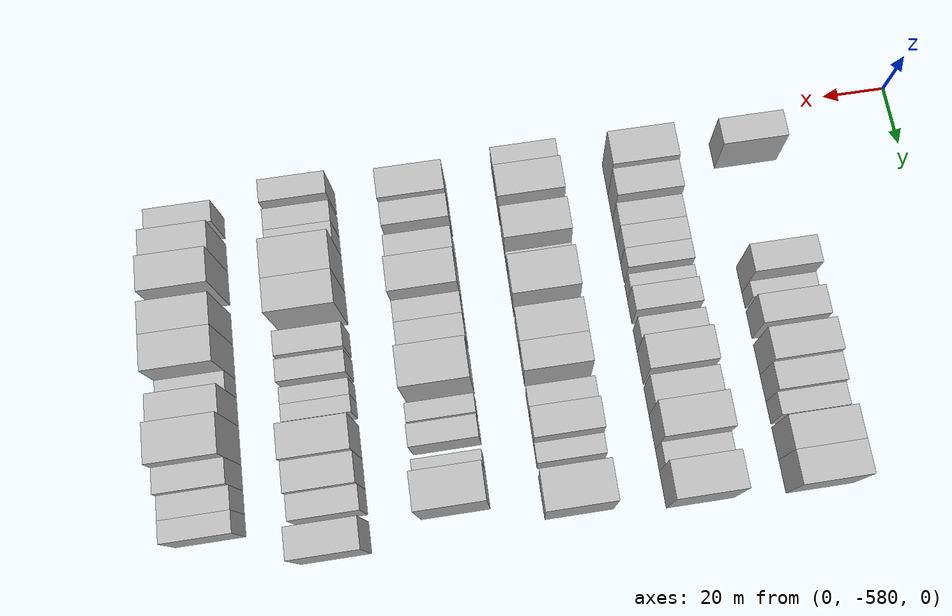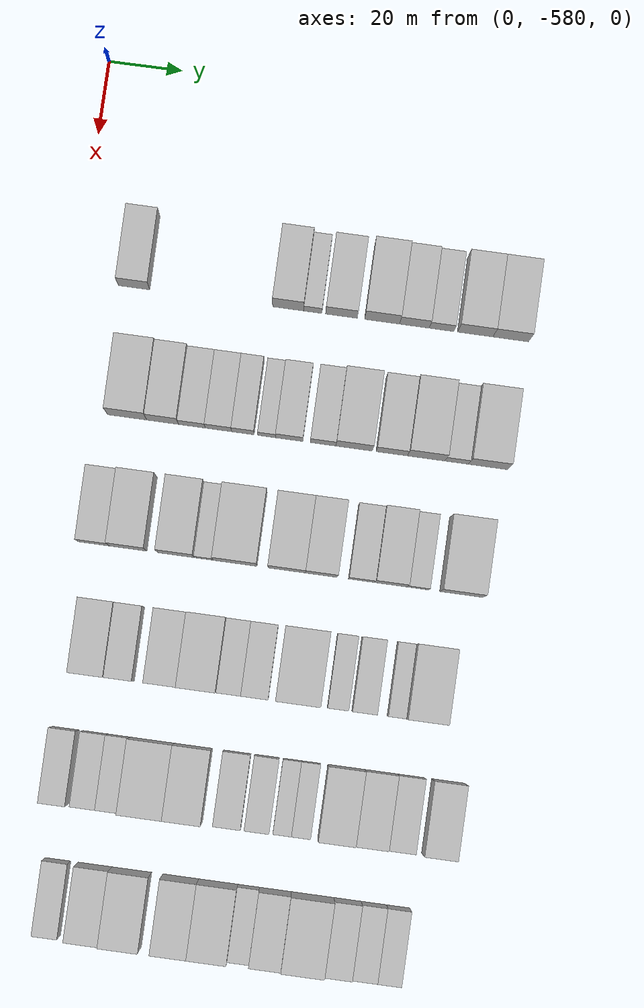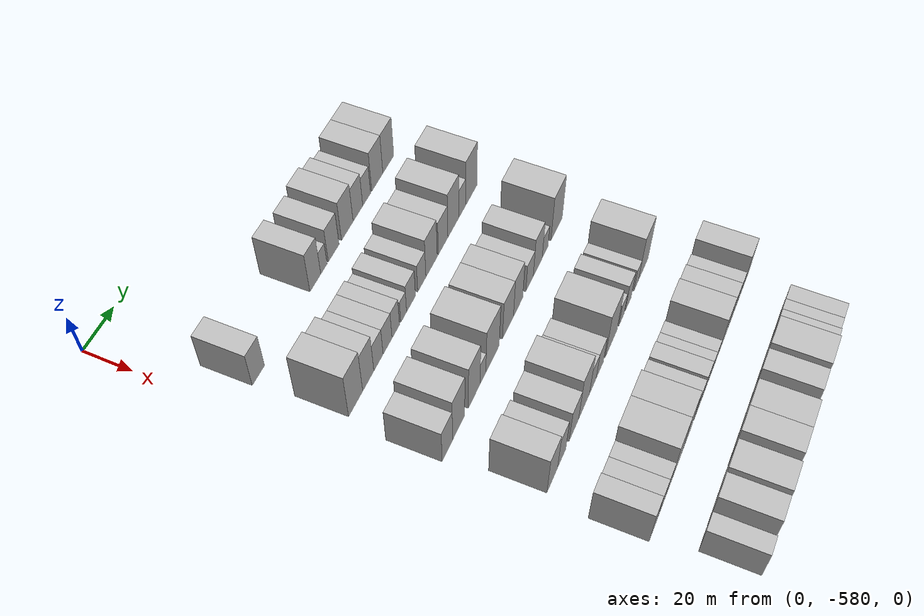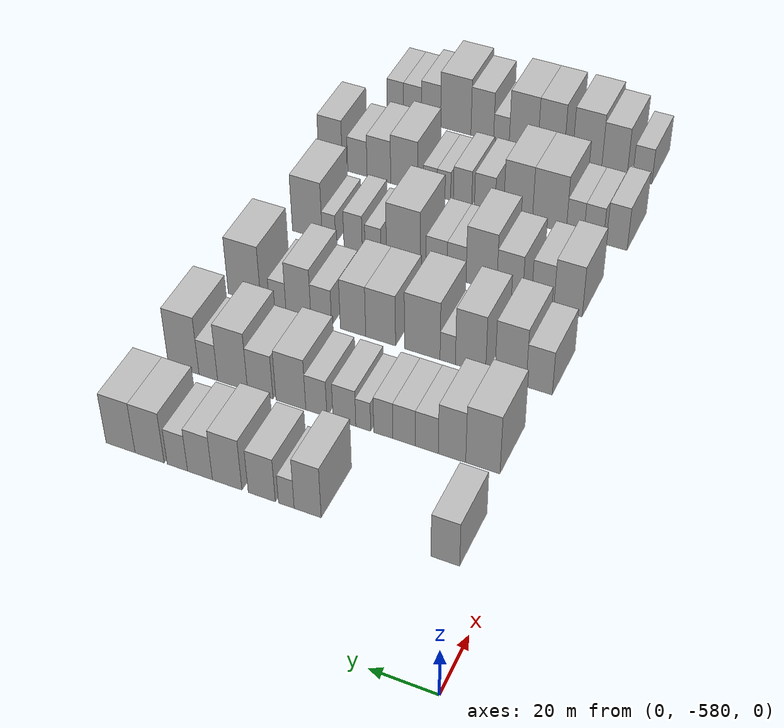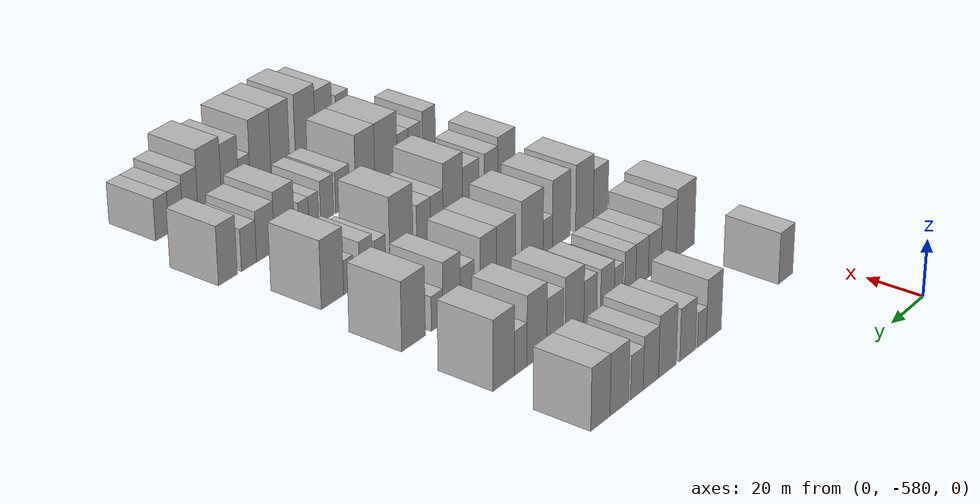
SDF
<sdf version="1.6">
 <world name="default">
  <model name="building_1">
   <static>1</static>
   <pose>50.0000 -564.7343 0 0.000000 0.000000 0.000000</pose>
   <link name="link">
    <pose>0 0 9.00 0 0 0</pose>
    <collision name="collision"><geometry><box><size>20.0000 8.5313 18.0000</size></box></geometry></collision>
    <visual name="visual">
     <cast_shadows>0</cast_shadows>
     <geometry><box><size>20.0000 8.5313 18.0000</size></box></geometry>
     <material>
      <script>
       <uri>model://HANNAS_wall/materials/scripts</uri>
       <uri>model://HANNAS_wall/materials/textures</uri>
       <name>vrc/HANNAS_wall</name>
      </script>
     </material>
    </visual>
   </link>
  </model>
  <model name="building_2">
   <static>1</static>
   <pose>50.0000 -522.7855 0 0.000000 0.000000 0.000000</pose>
   <link name="link">
    <pose>0 0 10.50 0 0 0</pose>
    <collision name="collision"><geometry><box><size>20.0000 8.4554 21.0000</size></box></geometry></collision>
    <visual name="visual">
     <cast_shadows>0</cast_shadows>
     <geometry><box><size>20.0000 8.4554 21.0000</size></box></geometry>
     <material>
      <script>
       <uri>model://HANNAS_wall/materials/scripts</uri>
       <uri>model://HANNAS_wall/materials/textures</uri>
       <name>vrc/HANNAS_wall</name>
      </script>
     </material>
    </visual>
   </link>
  </model>
  <model name="building_3">
   <static>1</static>
   <pose>50.0000 -516.0890 0 0.000000 0.000000 0.000000</pose>
   <link name="link">
    <pose>0 0 6.00 0 0 0</pose>
    <collision name="collision"><geometry><box><size>20.0000 4.9377 12.0000</size></box></geometry></collision>
    <visual name="visual">
     <cast_shadows>0</cast_shadows>
     <geometry><box><size>20.0000 4.9377 12.0000</size></box></geometry>
     <material>
      <script>
       <uri>model://HANNAS_wall/materials/scripts</uri>
       <uri>model://HANNAS_wall/materials/textures</uri>
       <name>vrc/HANNAS_wall</name>
      </script>
     </material>
    </visual>
   </link>
  </model>
  <model name="building_4">
   <static>1</static>
   <pose>50.0000 -508.3093 0 0.000000 0.000000 0.000000</pose>
   <link name="link">
    <pose>0 0 9.00 0 0 0</pose>
    <collision name="collision"><geometry><box><size>20.0000 8.6217 18.0000</size></box></geometry></collision>
    <visual name="visual">
     <cast_shadows>0</cast_shadows>
     <geometry><box><size>20.0000 8.6217 18.0000</size></box></geometry>
     <material>
      <script>
       <uri>model://HANNAS_wall/materials/scripts</uri>
       <uri>model://HANNAS_wall/materials/textures</uri>
       <name>vrc/HANNAS_wall</name>
      </script>
     </material>
    </visual>
   </link>
  </model>
  <model name="building_5">
   <static>1</static>
   <pose>50.0000 -497.2470 0 0.000000 0.000000 0.000000</pose>
   <link name="link">
    <pose>0 0 10.50 0 0 0</pose>
    <collision name="collision"><geometry><box><size>20.0000 9.5029 21.0000</size></box></geometry></collision>
    <visual name="visual">
     <cast_shadows>0</cast_shadows>
     <geometry><box><size>20.0000 9.5029 21.0000</size></box></geometry>
     <material>
      <script>
       <uri>model://HANNAS_wall/materials/scripts</uri>
       <uri>model://HANNAS_wall/materials/textures</uri>
       <name>vrc/HANNAS_wall</name>
      </script>
     </material>
    </visual>
   </link>
  </model>
  <model name="building_6">
   <static>1</static>
   <pose>50.0000 -488.4433 0 0.000000 0.000000 0.000000</pose>
   <link name="link">
    <pose>0 0 9.00 0 0 0</pose>
    <collision name="collision"><geometry><box><size>20.0000 8.1045 18.0000</size></box></geometry></collision>
    <visual name="visual">
     <cast_shadows>0</cast_shadows>
     <geometry><box><size>20.0000 8.1045 18.0000</size></box></geometry>
     <material>
      <script>
       <uri>model://HANNAS_wall/materials/scripts</uri>
       <uri>model://HANNAS_wall/materials/textures</uri>
       <name>vrc/HANNAS_wall</name>
      </script>
     </material>
    </visual>
   </link>
  </model>
  <model name="building_7">
   <static>1</static>
   <pose>50.0000 -481.0528 0 0.000000 0.000000 0.000000</pose>
   <link name="link">
    <pose>0 0 7.50 0 0 0</pose>
    <collision name="collision"><geometry><box><size>20.0000 6.6764 15.0000</size></box></geometry></collision>
    <visual name="visual">
     <cast_shadows>0</cast_shadows>
     <geometry><box><size>20.0000 6.6764 15.0000</size></box></geometry>
     <material>
      <script>
       <uri>model://HANNAS_wall/materials/scripts</uri>
       <uri>model://HANNAS_wall/materials/textures</uri>
       <name>vrc/HANNAS_wall</name>
      </script>
     </material>
    </visual>
   </link>
  </model>
  <model name="building_8">
   <static>1</static>
   <pose>50.0000 -471.8938 0 0.000000 0.000000 0.000000</pose>
   <link name="link">
    <pose>0 0 10.50 0 0 0</pose>
    <collision name="collision"><geometry><box><size>20.0000 9.6416 21.0000</size></box></geometry></collision>
    <visual name="visual">
     <cast_shadows>0</cast_shadows>
     <geometry><box><size>20.0000 9.6416 21.0000</size></box></geometry>
     <material>
      <script>
       <uri>model://HANNAS_wall/materials/scripts</uri>
       <uri>model://HANNAS_wall/materials/textures</uri>
       <name>vrc/HANNAS_wall</name>
      </script>
     </material>
    </visual>
   </link>
  </model>
  <model name="building_9">
   <static>1</static>
   <pose>50.0000 -462.2216 0 0.000000 0.000000 0.000000</pose>
   <link name="link">
    <pose>0 0 10.50 0 0 0</pose>
    <collision name="collision"><geometry><box><size>20.0000 9.7028 21.0000</size></box></geometry></collision>
    <visual name="visual">
     <cast_shadows>0</cast_shadows>
     <geometry><box><size>20.0000 9.7028 21.0000</size></box></geometry>
     <material>
      <script>
       <uri>model://HANNAS_wall/materials/scripts</uri>
       <uri>model://HANNAS_wall/materials/textures</uri>
       <name>vrc/HANNAS_wall</name>
      </script>
     </material>
    </visual>
   </link>
  </model>
  <model name="building_132">
   <static>1</static>
   <pose>85.0000 -561.6775 0 0.000000 0.000000 0.000000</pose>
   <link name="link">
    <pose>0 0 12.00 0 0 0</pose>
    <collision name="collision"><geometry><box><size>20.0000 10.6449 24.0000</size></box></geometry></collision>
    <visual name="visual">
     <cast_shadows>0</cast_shadows>
     <geometry><box><size>20.0000 10.6449 24.0000</size></box></geometry>
     <material>
      <script>
       <uri>model://HANNAS_wall/materials/scripts</uri>
       <uri>model://HANNAS_wall/materials/textures</uri>
       <name>vrc/HANNAS_wall</name>
      </script>
     </material>
    </visual>
   </link>
  </model>
  <model name="building_133">
   <static>1</static>
   <pose>85.0000 -552.0585 0 0.000000 0.000000 0.000000</pose>
   <link name="link">
    <pose>0 0 10.50 0 0 0</pose>
    <collision name="collision"><geometry><box><size>20.0000 8.5932 21.0000</size></box></geometry></collision>
    <visual name="visual">
     <cast_shadows>0</cast_shadows>
     <geometry><box><size>20.0000 8.5932 21.0000</size></box></geometry>
     <material>
      <script>
       <uri>model://HANNAS_wall/materials/scripts</uri>
       <uri>model://HANNAS_wall/materials/textures</uri>
       <name>vrc/HANNAS_wall</name>
      </script>
     </material>
    </visual>
   </link>
  </model>
  <model name="building_134">
   <static>1</static>
   <pose>85.0000 -544.1265 0 0.000000 0.000000 0.000000</pose>
   <link name="link">
    <pose>0 0 7.50 0 0 0</pose>
    <collision name="collision"><geometry><box><size>20.0000 7.2709 15.0000</size></box></geometry></collision>
    <visual name="visual">
     <cast_shadows>0</cast_shadows>
     <geometry><box><size>20.0000 7.2709 15.0000</size></box></geometry>
     <material>
      <script>
       <uri>model://HANNAS_wall/materials/scripts</uri>
       <uri>model://HANNAS_wall/materials/textures</uri>
       <name>vrc/HANNAS_wall</name>
      </script>
     </material>
    </visual>
   </link>
  </model>
  <model name="building_135">
   <static>1</static>
   <pose>85.0000 -536.9100 0 0.000000 0.000000 0.000000</pose>
   <link name="link">
    <pose>0 0 7.50 0 0 0</pose>
    <collision name="collision"><geometry><box><size>20.0000 7.1620 15.0000</size></box></geometry></collision>
    <visual name="visual">
     <cast_shadows>0</cast_shadows>
     <geometry><box><size>20.0000 7.1620 15.0000</size></box></geometry>
     <material>
      <script>
       <uri>model://HANNAS_wall/materials/scripts</uri>
       <uri>model://HANNAS_wall/materials/textures</uri>
       <name>vrc/HANNAS_wall</name>
      </script>
     </material>
    </visual>
   </link>
  </model>
  <model name="building_136">
   <static>1</static>
   <pose>85.0000 -530.2683 0 0.000000 0.000000 0.000000</pose>
   <link name="link">
    <pose>0 0 7.50 0 0 0</pose>
    <collision name="collision"><geometry><box><size>20.0000 6.1215 15.0000</size></box></geometry></collision>
    <visual name="visual">
     <cast_shadows>0</cast_shadows>
     <geometry><box><size>20.0000 6.1215 15.0000</size></box></geometry>
     <material>
      <script>
       <uri>model://HANNAS_wall/materials/scripts</uri>
       <uri>model://HANNAS_wall/materials/textures</uri>
       <name>vrc/HANNAS_wall</name>
      </script>
     </material>
    </visual>
   </link>
  </model>
  <model name="building_137">
   <static>1</static>
   <pose>85.0000 -523.8050 0 0.000000 0.000000 0.000000</pose>
   <link name="link">
    <pose>0 0 6.00 0 0 0</pose>
    <collision name="collision"><geometry><box><size>20.0000 4.8052 12.0000</size></box></geometry></collision>
    <visual name="visual">
     <cast_shadows>0</cast_shadows>
     <geometry><box><size>20.0000 4.8052 12.0000</size></box></geometry>
     <material>
      <script>
       <uri>model://HANNAS_wall/materials/scripts</uri>
       <uri>model://HANNAS_wall/materials/textures</uri>
       <name>vrc/HANNAS_wall</name>
      </script>
     </material>
    </visual>
   </link>
  </model>
  <model name="building_138">
   <static>1</static>
   <pose>85.0000 -517.6900 0 0.000000 0.000000 0.000000</pose>
   <link name="link">
    <pose>0 0 7.50 0 0 0</pose>
    <collision name="collision"><geometry><box><size>20.0000 7.4249 15.0000</size></box></geometry></collision>
    <visual name="visual">
     <cast_shadows>0</cast_shadows>
     <geometry><box><size>20.0000 7.4249 15.0000</size></box></geometry>
     <material>
      <script>
       <uri>model://HANNAS_wall/materials/scripts</uri>
       <uri>model://HANNAS_wall/materials/textures</uri>
       <name>vrc/HANNAS_wall</name>
      </script>
     </material>
    </visual>
   </link>
  </model>
  <model name="building_139">
   <static>1</static>
   <pose>85.0000 -508.5003 0 0.000000 0.000000 0.000000</pose>
   <link name="link">
    <pose>0 0 7.50 0 0 0</pose>
    <collision name="collision"><geometry><box><size>20.0000 6.9545 15.0000</size></box></geometry></collision>
    <visual name="visual">
     <cast_shadows>0</cast_shadows>
     <geometry><box><size>20.0000 6.9545 15.0000</size></box></geometry>
     <material>
      <script>
       <uri>model://HANNAS_wall/materials/scripts</uri>
       <uri>model://HANNAS_wall/materials/textures</uri>
       <name>vrc/HANNAS_wall</name>
      </script>
     </material>
    </visual>
   </link>
  </model>
  <model name="building_140">
   <static>1</static>
   <pose>85.0000 -500.0599 0 0.000000 0.000000 0.000000</pose>
   <link name="link">
    <pose>0 0 10.50 0 0 0</pose>
    <collision name="collision"><geometry><box><size>20.0000 9.9264 21.0000</size></box></geometry></collision>
    <visual name="visual">
     <cast_shadows>0</cast_shadows>
     <geometry><box><size>20.0000 9.9264 21.0000</size></box></geometry>
     <material>
      <script>
       <uri>model://HANNAS_wall/materials/scripts</uri>
       <uri>model://HANNAS_wall/materials/textures</uri>
       <name>vrc/HANNAS_wall</name>
      </script>
     </material>
    </visual>
   </link>
  </model>
  <model name="building_141">
   <static>1</static>
   <pose>85.0000 -489.8302 0 0.000000 0.000000 0.000000</pose>
   <link name="link">
    <pose>0 0 9.00 0 0 0</pose>
    <collision name="collision"><geometry><box><size>20.0000 8.5329 18.0000</size></box></geometry></collision>
    <visual name="visual">
     <cast_shadows>0</cast_shadows>
     <geometry><box><size>20.0000 8.5329 18.0000</size></box></geometry>
     <material>
      <script>
       <uri>model://HANNAS_wall/materials/scripts</uri>
       <uri>model://HANNAS_wall/materials/textures</uri>
       <name>vrc/HANNAS_wall</name>
      </script>
     </material>
    </visual>
   </link>
  </model>
  <model name="building_142">
   <static>1</static>
   <pose>85.0000 -480.4751 0 0.000000 0.000000 0.000000</pose>
   <link name="link">
    <pose>0 0 12.00 0 0 0</pose>
    <collision name="collision"><geometry><box><size>20.0000 10.1774 24.0000</size></box></geometry></collision>
    <visual name="visual">
     <cast_shadows>0</cast_shadows>
     <geometry><box><size>20.0000 10.1774 24.0000</size></box></geometry>
     <material>
      <script>
       <uri>model://HANNAS_wall/materials/scripts</uri>
       <uri>model://HANNAS_wall/materials/textures</uri>
       <name>vrc/HANNAS_wall</name>
      </script>
     </material>
    </visual>
   </link>
  </model>
  <model name="building_143">
   <static>1</static>
   <pose>85.0000 -472.2030 0 0.000000 0.000000 0.000000</pose>
   <link name="link">
    <pose>0 0 7.50 0 0 0</pose>
    <collision name="collision"><geometry><box><size>20.0000 6.3668 15.0000</size></box></geometry></collision>
    <visual name="visual">
     <cast_shadows>0</cast_shadows>
     <geometry><box><size>20.0000 6.3668 15.0000</size></box></geometry>
     <material>
      <script>
       <uri>model://HANNAS_wall/materials/scripts</uri>
       <uri>model://HANNAS_wall/materials/textures</uri>
       <name>vrc/HANNAS_wall</name>
      </script>
     </material>
    </visual>
   </link>
  </model>
  <model name="building_144">
   <static>1</static>
   <pose>85.0000 -463.7161 0 0.000000 0.000000 0.000000</pose>
   <link name="link">
    <pose>0 0 12.00 0 0 0</pose>
    <collision name="collision"><geometry><box><size>20.0000 10.6070 24.0000</size></box></geometry></collision>
    <visual name="visual">
     <cast_shadows>0</cast_shadows>
     <geometry><box><size>20.0000 10.6070 24.0000</size></box></geometry>
     <material>
      <script>
       <uri>model://HANNAS_wall/materials/scripts</uri>
       <uri>model://HANNAS_wall/materials/textures</uri>
       <name>vrc/HANNAS_wall</name>
      </script>
     </material>
    </visual>
   </link>
  </model>
  <model name="building_256">
   <static>1</static>
   <pose>120.0000 -565.7713 0 0.000000 0.000000 0.000000</pose>
   <link name="link">
    <pose>0 0 9.00 0 0 0</pose>
    <collision name="collision"><geometry><box><size>20.0000 8.4573 18.0000</size></box></geometry></collision>
    <visual name="visual">
     <cast_shadows>0</cast_shadows>
     <geometry><box><size>20.0000 8.4573 18.0000</size></box></geometry>
     <material>
      <script>
       <uri>model://HANNAS_wall/materials/scripts</uri>
       <uri>model://HANNAS_wall/materials/textures</uri>
       <name>vrc/HANNAS_wall</name>
      </script>
     </material>
    </visual>
   </link>
  </model>
  <model name="building_257">
   <static>1</static>
   <pose>120.0000 -556.5007 0 0.000000 0.000000 0.000000</pose>
   <link name="link">
    <pose>0 0 12.00 0 0 0</pose>
    <collision name="collision"><geometry><box><size>20.0000 10.0839 24.0000</size></box></geometry></collision>
    <visual name="visual">
     <cast_shadows>0</cast_shadows>
     <geometry><box><size>20.0000 10.0839 24.0000</size></box></geometry>
     <material>
      <script>
       <uri>model://HANNAS_wall/materials/scripts</uri>
       <uri>model://HANNAS_wall/materials/textures</uri>
       <name>vrc/HANNAS_wall</name>
      </script>
     </material>
    </visual>
   </link>
  </model>
  <model name="building_258">
   <static>1</static>
   <pose>120.0000 -543.4946 0 0.000000 0.000000 0.000000</pose>
   <link name="link">
    <pose>0 0 12.00 0 0 0</pose>
    <collision name="collision"><geometry><box><size>20.0000 9.9283 24.0000</size></box></geometry></collision>
    <visual name="visual">
     <cast_shadows>0</cast_shadows>
     <geometry><box><size>20.0000 9.9283 24.0000</size></box></geometry>
     <material>
      <script>
       <uri>model://HANNAS_wall/materials/scripts</uri>
       <uri>model://HANNAS_wall/materials/textures</uri>
       <name>vrc/HANNAS_wall</name>
      </script>
     </material>
    </visual>
   </link>
  </model>
  <model name="building_259">
   <static>1</static>
   <pose>120.0000 -535.9975 0 0.000000 0.000000 0.000000</pose>
   <link name="link">
    <pose>0 0 6.00 0 0 0</pose>
    <collision name="collision"><geometry><box><size>20.0000 5.0660 12.0000</size></box></geometry></collision>
    <visual name="visual">
     <cast_shadows>0</cast_shadows>
     <geometry><box><size>20.0000 5.0660 12.0000</size></box></geometry>
     <material>
      <script>
       <uri>model://HANNAS_wall/materials/scripts</uri>
       <uri>model://HANNAS_wall/materials/textures</uri>
       <name>vrc/HANNAS_wall</name>
      </script>
     </material>
    </visual>
   </link>
  </model>
  <model name="building_260">
   <static>1</static>
   <pose>120.0000 -527.5284 0 0.000000 0.000000 0.000000</pose>
   <link name="link">
    <pose>0 0 12.00 0 0 0</pose>
    <collision name="collision"><geometry><box><size>20.0000 11.8721 24.0000</size></box></geometry></collision>
    <visual name="visual">
     <cast_shadows>0</cast_shadows>
     <geometry><box><size>20.0000 11.8721 24.0000</size></box></geometry>
     <material>
      <script>
       <uri>model://HANNAS_wall/materials/scripts</uri>
       <uri>model://HANNAS_wall/materials/textures</uri>
       <name>vrc/HANNAS_wall</name>
      </script>
     </material>
    </visual>
   </link>
  </model>
  <model name="building_261">
   <static>1</static>
   <pose>120.0000 -513.5389 0 0.000000 0.000000 0.000000</pose>
   <link name="link">
    <pose>0 0 10.50 0 0 0</pose>
    <collision name="collision"><geometry><box><size>20.0000 10.1069 21.0000</size></box></geometry></collision>
    <visual name="visual">
     <cast_shadows>0</cast_shadows>
     <geometry><box><size>20.0000 10.1069 21.0000</size></box></geometry>
     <material>
      <script>
       <uri>model://HANNAS_wall/materials/scripts</uri>
       <uri>model://HANNAS_wall/materials/textures</uri>
       <name>vrc/HANNAS_wall</name>
      </script>
     </material>
    </visual>
   </link>
  </model>
  <model name="building_262">
   <static>1</static>
   <pose>120.0000 -504.1413 0 0.000000 0.000000 0.000000</pose>
   <link name="link">
    <pose>0 0 10.50 0 0 0</pose>
    <collision name="collision"><geometry><box><size>20.0000 8.6883 21.0000</size></box></geometry></collision>
    <visual name="visual">
     <cast_shadows>0</cast_shadows>
     <geometry><box><size>20.0000 8.6883 21.0000</size></box></geometry>
     <material>
      <script>
       <uri>model://HANNAS_wall/materials/scripts</uri>
       <uri>model://HANNAS_wall/materials/textures</uri>
       <name>vrc/HANNAS_wall</name>
      </script>
     </material>
    </visual>
   </link>
  </model>
  <model name="building_263">
   <static>1</static>
   <pose>120.0000 -493.2223 0 0.000000 0.000000 0.000000</pose>
   <link name="link">
    <pose>0 0 7.50 0 0 0</pose>
    <collision name="collision"><geometry><box><size>20.0000 7.1499 15.0000</size></box></geometry></collision>
    <visual name="visual">
     <cast_shadows>0</cast_shadows>
     <geometry><box><size>20.0000 7.1499 15.0000</size></box></geometry>
     <material>
      <script>
       <uri>model://HANNAS_wall/materials/scripts</uri>
       <uri>model://HANNAS_wall/materials/textures</uri>
       <name>vrc/HANNAS_wall</name>
      </script>
     </material>
    </visual>
   </link>
  </model>
  <model name="building_264">
   <static>1</static>
   <pose>120.0000 -485.2786 0 0.000000 0.000000 0.000000</pose>
   <link name="link">
    <pose>0 0 10.50 0 0 0</pose>
    <collision name="collision"><geometry><box><size>20.0000 8.7374 21.0000</size></box></geometry></collision>
    <visual name="visual">
     <cast_shadows>0</cast_shadows>
     <geometry><box><size>20.0000 8.7374 21.0000</size></box></geometry>
     <material>
      <script>
       <uri>model://HANNAS_wall/materials/scripts</uri>
       <uri>model://HANNAS_wall/materials/textures</uri>
       <name>vrc/HANNAS_wall</name>
      </script>
     </material>
    </visual>
   </link>
  </model>
  <model name="building_265">
   <static>1</static>
   <pose>120.0000 -477.9898 0 0.000000 0.000000 0.000000</pose>
   <link name="link">
    <pose>0 0 6.00 0 0 0</pose>
    <collision name="collision"><geometry><box><size>20.0000 5.8403 12.0000</size></box></geometry></collision>
    <visual name="visual">
     <cast_shadows>0</cast_shadows>
     <geometry><box><size>20.0000 5.8403 12.0000</size></box></geometry>
     <material>
      <script>
       <uri>model://HANNAS_wall/materials/scripts</uri>
       <uri>model://HANNAS_wall/materials/textures</uri>
       <name>vrc/HANNAS_wall</name>
      </script>
     </material>
    </visual>
   </link>
  </model>
  <model name="building_266">
   <static>1</static>
   <pose>120.0000 -466.2602 0 0.000000 0.000000 0.000000</pose>
   <link name="link">
    <pose>0 0 12.00 0 0 0</pose>
    <collision name="collision"><geometry><box><size>20.0000 11.6190 24.0000</size></box></geometry></collision>
    <visual name="visual">
     <cast_shadows>0</cast_shadows>
     <geometry><box><size>20.0000 11.6190 24.0000</size></box></geometry>
     <material>
      <script>
       <uri>model://HANNAS_wall/materials/scripts</uri>
       <uri>model://HANNAS_wall/materials/textures</uri>
       <name>vrc/HANNAS_wall</name>
      </script>
     </material>
    </visual>
   </link>
  </model>
  <model name="building_383">
   <static>1</static>
   <pose>155.0000 -562.2432 0 0.000000 0.000000 0.000000</pose>
   <link name="link">
    <pose>0 0 10.50 0 0 0</pose>
    <collision name="collision"><geometry><box><size>20.0000 9.5135 21.0000</size></box></geometry></collision>
    <visual name="visual">
     <cast_shadows>0</cast_shadows>
     <geometry><box><size>20.0000 9.5135 21.0000</size></box></geometry>
     <material>
      <script>
       <uri>model://HANNAS_wall/materials/scripts</uri>
       <uri>model://HANNAS_wall/materials/textures</uri>
       <name>vrc/HANNAS_wall</name>
      </script>
     </material>
    </visual>
   </link>
  </model>
  <model name="building_384">
   <static>1</static>
   <pose>155.0000 -553.7398 0 0.000000 0.000000 0.000000</pose>
   <link name="link">
    <pose>0 0 9.00 0 0 0</pose>
    <collision name="collision"><geometry><box><size>20.0000 7.4932 18.0000</size></box></geometry></collision>
    <visual name="visual">
     <cast_shadows>0</cast_shadows>
     <geometry><box><size>20.0000 7.4932 18.0000</size></box></geometry>
     <material>
      <script>
       <uri>model://HANNAS_wall/materials/scripts</uri>
       <uri>model://HANNAS_wall/materials/textures</uri>
       <name>vrc/HANNAS_wall</name>
      </script>
     </material>
    </visual>
   </link>
  </model>
  <model name="building_385">
   <static>1</static>
   <pose>155.0000 -542.5617 0 0.000000 0.000000 0.000000</pose>
   <link name="link">
    <pose>0 0 9.00 0 0 0</pose>
    <collision name="collision"><geometry><box><size>20.0000 8.8630 18.0000</size></box></geometry></collision>
    <visual name="visual">
     <cast_shadows>0</cast_shadows>
     <geometry><box><size>20.0000 8.8630 18.0000</size></box></geometry>
     <material>
      <script>
       <uri>model://HANNAS_wall/materials/scripts</uri>
       <uri>model://HANNAS_wall/materials/textures</uri>
       <name>vrc/HANNAS_wall</name>
      </script>
     </material>
    </visual>
   </link>
  </model>
  <model name="building_386">
   <static>1</static>
   <pose>155.0000 -532.8723 0 0.000000 0.000000 0.000000</pose>
   <link name="link">
    <pose>0 0 12.00 0 0 0</pose>
    <collision name="collision"><geometry><box><size>20.0000 10.5158 24.0000</size></box></geometry></collision>
    <visual name="visual">
     <cast_shadows>0</cast_shadows>
     <geometry><box><size>20.0000 10.5158 24.0000</size></box></geometry>
     <material>
      <script>
       <uri>model://HANNAS_wall/materials/scripts</uri>
       <uri>model://HANNAS_wall/materials/textures</uri>
       <name>vrc/HANNAS_wall</name>
      </script>
     </material>
    </visual>
   </link>
  </model>
  <model name="building_387">
   <static>1</static>
   <pose>155.0000 -524.3247 0 0.000000 0.000000 0.000000</pose>
   <link name="link">
    <pose>0 0 7.50 0 0 0</pose>
    <collision name="collision"><geometry><box><size>20.0000 6.5794 15.0000</size></box></geometry></collision>
    <visual name="visual">
     <cast_shadows>0</cast_shadows>
     <geometry><box><size>20.0000 6.5794 15.0000</size></box></geometry>
     <material>
      <script>
       <uri>model://HANNAS_wall/materials/scripts</uri>
       <uri>model://HANNAS_wall/materials/textures</uri>
       <name>vrc/HANNAS_wall</name>
      </script>
     </material>
    </visual>
   </link>
  </model>
  <model name="building_388">
   <static>1</static>
   <pose>155.0000 -517.3724 0 0.000000 0.000000 0.000000</pose>
   <link name="link">
    <pose>0 0 7.50 0 0 0</pose>
    <collision name="collision"><geometry><box><size>20.0000 7.3251 15.0000</size></box></geometry></collision>
    <visual name="visual">
     <cast_shadows>0</cast_shadows>
     <geometry><box><size>20.0000 7.3251 15.0000</size></box></geometry>
     <material>
      <script>
       <uri>model://HANNAS_wall/materials/scripts</uri>
       <uri>model://HANNAS_wall/materials/textures</uri>
       <name>vrc/HANNAS_wall</name>
      </script>
     </material>
    </visual>
   </link>
  </model>
  <model name="building_389">
   <static>1</static>
   <pose>155.0000 -505.7237 0 0.000000 0.000000 0.000000</pose>
   <link name="link">
    <pose>0 0 12.00 0 0 0</pose>
    <collision name="collision"><geometry><box><size>20.0000 11.9723 24.0000</size></box></geometry></collision>
    <visual name="visual">
     <cast_shadows>0</cast_shadows>
     <geometry><box><size>20.0000 11.9723 24.0000</size></box></geometry>
     <material>
      <script>
       <uri>model://HANNAS_wall/materials/scripts</uri>
       <uri>model://HANNAS_wall/materials/textures</uri>
       <name>vrc/HANNAS_wall</name>
      </script>
     </material>
    </visual>
   </link>
  </model>
  <model name="building_390">
   <static>1</static>
   <pose>155.0000 -494.9315 0 0.000000 0.000000 0.000000</pose>
   <link name="link">
    <pose>0 0 6.00 0 0 0</pose>
    <collision name="collision"><geometry><box><size>20.0000 5.6120 12.0000</size></box></geometry></collision>
    <visual name="visual">
     <cast_shadows>0</cast_shadows>
     <geometry><box><size>20.0000 5.6120 12.0000</size></box></geometry>
     <material>
      <script>
       <uri>model://HANNAS_wall/materials/scripts</uri>
       <uri>model://HANNAS_wall/materials/textures</uri>
       <name>vrc/HANNAS_wall</name>
      </script>
     </material>
    </visual>
   </link>
  </model>
  <model name="building_391">
   <static>1</static>
   <pose>155.0000 -487.8292 0 0.000000 0.000000 0.000000</pose>
   <link name="link">
    <pose>0 0 7.50 0 0 0</pose>
    <collision name="collision"><geometry><box><size>20.0000 6.5926 15.0000</size></box></geometry></collision>
    <visual name="visual">
     <cast_shadows>0</cast_shadows>
     <geometry><box><size>20.0000 6.5926 15.0000</size></box></geometry>
     <material>
      <script>
       <uri>model://HANNAS_wall/materials/scripts</uri>
       <uri>model://HANNAS_wall/materials/textures</uri>
       <name>vrc/HANNAS_wall</name>
      </script>
     </material>
    </visual>
   </link>
  </model>
  <model name="building_392">
   <static>1</static>
   <pose>155.0000 -479.1048 0 0.000000 0.000000 0.000000</pose>
   <link name="link">
    <pose>0 0 6.00 0 0 0</pose>
    <collision name="collision"><geometry><box><size>20.0000 4.8563 12.0000</size></box></geometry></collision>
    <visual name="visual">
     <cast_shadows>0</cast_shadows>
     <geometry><box><size>20.0000 4.8563 12.0000</size></box></geometry>
     <material>
      <script>
       <uri>model://HANNAS_wall/materials/scripts</uri>
       <uri>model://HANNAS_wall/materials/textures</uri>
       <name>vrc/HANNAS_wall</name>
      </script>
     </material>
    </visual>
   </link>
  </model>
  <model name="building_393">
   <static>1</static>
   <pose>155.0000 -471.2320 0 0.000000 0.000000 0.000000</pose>
   <link name="link">
    <pose>0 0 12.00 0 0 0</pose>
    <collision name="collision"><geometry><box><size>20.0000 10.8892 24.0000</size></box></geometry></collision>
    <visual name="visual">
     <cast_shadows>0</cast_shadows>
     <geometry><box><size>20.0000 10.8892 24.0000</size></box></geometry>
     <material>
      <script>
       <uri>model://HANNAS_wall/materials/scripts</uri>
       <uri>model://HANNAS_wall/materials/textures</uri>
       <name>vrc/HANNAS_wall</name>
      </script>
     </material>
    </visual>
   </link>
  </model>
  <model name="building_513">
   <static>1</static>
   <pose>190.0000 -566.3944 0 0.000000 0.000000 0.000000</pose>
   <link name="link">
    <pose>0 0 9.00 0 0 0</pose>
    <collision name="collision"><geometry><box><size>20.0000 7.2113 18.0000</size></box></geometry></collision>
    <visual name="visual">
     <cast_shadows>0</cast_shadows>
     <geometry><box><size>20.0000 7.2113 18.0000</size></box></geometry>
     <material>
      <script>
       <uri>model://HANNAS_wall/materials/scripts</uri>
       <uri>model://HANNAS_wall/materials/textures</uri>
       <name>vrc/HANNAS_wall</name>
      </script>
     </material>
    </visual>
   </link>
  </model>
  <model name="building_514">
   <static>1</static>
   <pose>190.0000 -558.4072 0 0.000000 0.000000 0.000000</pose>
   <link name="link">
    <pose>0 0 7.50 0 0 0</pose>
    <collision name="collision"><geometry><box><size>20.0000 6.7631 15.0000</size></box></geometry></collision>
    <visual name="visual">
     <cast_shadows>0</cast_shadows>
     <geometry><box><size>20.0000 6.7631 15.0000</size></box></geometry>
     <material>
      <script>
       <uri>model://HANNAS_wall/materials/scripts</uri>
       <uri>model://HANNAS_wall/materials/textures</uri>
       <name>vrc/HANNAS_wall</name>
      </script>
     </material>
    </visual>
   </link>
  </model>
  <model name="building_515">
   <static>1</static>
   <pose>190.0000 -551.9553 0 0.000000 0.000000 0.000000</pose>
   <link name="link">
    <pose>0 0 7.50 0 0 0</pose>
    <collision name="collision"><geometry><box><size>20.0000 6.1406 15.0000</size></box></geometry></collision>
    <visual name="visual">
     <cast_shadows>0</cast_shadows>
     <geometry><box><size>20.0000 6.1406 15.0000</size></box></geometry>
     <material>
      <script>
       <uri>model://HANNAS_wall/materials/scripts</uri>
       <uri>model://HANNAS_wall/materials/textures</uri>
       <name>vrc/HANNAS_wall</name>
      </script>
     </material>
    </visual>
   </link>
  </model>
  <model name="building_516">
   <static>1</static>
   <pose>190.0000 -542.9043 0 0.000000 0.000000 0.000000</pose>
   <link name="link">
    <pose>0 0 12.00 0 0 0</pose>
    <collision name="collision"><geometry><box><size>20.0000 11.9614 24.0000</size></box></geometry></collision>
    <visual name="visual">
     <cast_shadows>0</cast_shadows>
     <geometry><box><size>20.0000 11.9614 24.0000</size></box></geometry>
     <material>
      <script>
       <uri>model://HANNAS_wall/materials/scripts</uri>
       <uri>model://HANNAS_wall/materials/textures</uri>
       <name>vrc/HANNAS_wall</name>
      </script>
     </material>
    </visual>
   </link>
  </model>
  <model name="building_517">
   <static>1</static>
   <pose>190.0000 -531.8039 0 0.000000 0.000000 0.000000</pose>
   <link name="link">
    <pose>0 0 12.00 0 0 0</pose>
    <collision name="collision"><geometry><box><size>20.0000 10.2395 24.0000</size></box></geometry></collision>
    <visual name="visual">
     <cast_shadows>0</cast_shadows>
     <geometry><box><size>20.0000 10.2395 24.0000</size></box></geometry>
     <material>
      <script>
       <uri>model://HANNAS_wall/materials/scripts</uri>
       <uri>model://HANNAS_wall/materials/textures</uri>
       <name>vrc/HANNAS_wall</name>
      </script>
     </material>
    </visual>
   </link>
  </model>
  <model name="building_518">
   <static>1</static>
   <pose>190.0000 -519.9761 0 0.000000 0.000000 0.000000</pose>
   <link name="link">
    <pose>0 0 7.50 0 0 0</pose>
    <collision name="collision"><geometry><box><size>20.0000 7.4159 15.0000</size></box></geometry></collision>
    <visual name="visual">
     <cast_shadows>0</cast_shadows>
     <geometry><box><size>20.0000 7.4159 15.0000</size></box></geometry>
     <material>
      <script>
       <uri>model://HANNAS_wall/materials/scripts</uri>
       <uri>model://HANNAS_wall/materials/textures</uri>
       <name>vrc/HANNAS_wall</name>
      </script>
     </material>
    </visual>
   </link>
  </model>
  <model name="building_519">
   <static>1</static>
   <pose>190.0000 -511.9423 0 0.000000 0.000000 0.000000</pose>
   <link name="link">
    <pose>0 0 7.50 0 0 0</pose>
    <collision name="collision"><geometry><box><size>20.0000 6.6519 15.0000</size></box></geometry></collision>
    <visual name="visual">
     <cast_shadows>0</cast_shadows>
     <geometry><box><size>20.0000 6.6519 15.0000</size></box></geometry>
     <material>
      <script>
       <uri>model://HANNAS_wall/materials/scripts</uri>
       <uri>model://HANNAS_wall/materials/textures</uri>
       <name>vrc/HANNAS_wall</name>
      </script>
     </material>
    </visual>
   </link>
  </model>
  <model name="building_520">
   <static>1</static>
   <pose>190.0000 -505.1398 0 0.000000 0.000000 0.000000</pose>
   <link name="link">
    <pose>0 0 6.00 0 0 0</pose>
    <collision name="collision"><geometry><box><size>20.0000 4.9531 12.0000</size></box></geometry></collision>
    <visual name="visual">
     <cast_shadows>0</cast_shadows>
     <geometry><box><size>20.0000 4.9531 12.0000</size></box></geometry>
     <material>
      <script>
       <uri>model://HANNAS_wall/materials/scripts</uri>
       <uri>model://HANNAS_wall/materials/textures</uri>
       <name>vrc/HANNAS_wall</name>
      </script>
     </material>
    </visual>
   </link>
  </model>
  <model name="building_521">
   <static>1</static>
   <pose>190.0000 -500.1002 0 0.000000 0.000000 0.000000</pose>
   <link name="link">
    <pose>0 0 6.00 0 0 0</pose>
    <collision name="collision"><geometry><box><size>20.0000 5.1261 12.0000</size></box></geometry></collision>
    <visual name="visual">
     <cast_shadows>0</cast_shadows>
     <geometry><box><size>20.0000 5.1261 12.0000</size></box></geometry>
     <material>
      <script>
       <uri>model://HANNAS_wall/materials/scripts</uri>
       <uri>model://HANNAS_wall/materials/textures</uri>
       <name>vrc/HANNAS_wall</name>
      </script>
     </material>
    </visual>
   </link>
  </model>
  <model name="building_522">
   <static>1</static>
   <pose>190.0000 -490.5487 0 0.000000 0.000000 0.000000</pose>
   <link name="link">
    <pose>0 0 10.50 0 0 0</pose>
    <collision name="collision"><geometry><box><size>20.0000 9.9770 21.0000</size></box></geometry></collision>
    <visual name="visual">
     <cast_shadows>0</cast_shadows>
     <geometry><box><size>20.0000 9.9770 21.0000</size></box></geometry>
     <material>
      <script>
       <uri>model://HANNAS_wall/materials/scripts</uri>
       <uri>model://HANNAS_wall/materials/textures</uri>
       <name>vrc/HANNAS_wall</name>
      </script>
     </material>
    </visual>
   </link>
  </model>
  <model name="building_523">
   <static>1</static>
   <pose>190.0000 -481.1526 0 0.000000 0.000000 0.000000</pose>
   <link name="link">
    <pose>0 0 9.00 0 0 0</pose>
    <collision name="collision"><geometry><box><size>20.0000 8.8151 18.0000</size></box></geometry></collision>
    <visual name="visual">
     <cast_shadows>0</cast_shadows>
     <geometry><box><size>20.0000 8.8151 18.0000</size></box></geometry>
     <material>
      <script>
       <uri>model://HANNAS_wall/materials/scripts</uri>
       <uri>model://HANNAS_wall/materials/textures</uri>
       <name>vrc/HANNAS_wall</name>
      </script>
     </material>
    </visual>
   </link>
  </model>
  <model name="building_524">
   <static>1</static>
   <pose>190.0000 -473.1020 0 0.000000 0.000000 0.000000</pose>
   <link name="link">
    <pose>0 0 7.50 0 0 0</pose>
    <collision name="collision"><geometry><box><size>20.0000 7.2863 15.0000</size></box></geometry></collision>
    <visual name="visual">
     <cast_shadows>0</cast_shadows>
     <geometry><box><size>20.0000 7.2863 15.0000</size></box></geometry>
     <material>
      <script>
       <uri>model://HANNAS_wall/materials/scripts</uri>
       <uri>model://HANNAS_wall/materials/textures</uri>
       <name>vrc/HANNAS_wall</name>
      </script>
     </material>
    </visual>
   </link>
  </model>
  <model name="building_525">
   <static>1</static>
   <pose>190.0000 -462.9992 0 0.000000 0.000000 0.000000</pose>
   <link name="link">
    <pose>0 0 10.50 0 0 0</pose>
    <collision name="collision"><geometry><box><size>20.0000 8.9193 21.0000</size></box></geometry></collision>
    <visual name="visual">
     <cast_shadows>0</cast_shadows>
     <geometry><box><size>20.0000 8.9193 21.0000</size></box></geometry>
     <material>
      <script>
       <uri>model://HANNAS_wall/materials/scripts</uri>
       <uri>model://HANNAS_wall/materials/textures</uri>
       <name>vrc/HANNAS_wall</name>
      </script>
     </material>
    </visual>
   </link>
  </model>
  <model name="building_642">
   <static>1</static>
   <pose>225.0000 -563.5747 0 0.000000 0.000000 0.000000</pose>
   <link name="link">
    <pose>0 0 7.50 0 0 0</pose>
    <collision name="collision"><geometry><box><size>20.0000 6.8506 15.0000</size></box></geometry></collision>
    <visual name="visual">
     <cast_shadows>0</cast_shadows>
     <geometry><box><size>20.0000 6.8506 15.0000</size></box></geometry>
     <material>
      <script>
       <uri>model://HANNAS_wall/materials/scripts</uri>
       <uri>model://HANNAS_wall/materials/textures</uri>
       <name>vrc/HANNAS_wall</name>
      </script>
     </material>
    </visual>
   </link>
  </model>
  <model name="building_643">
   <static>1</static>
   <pose>225.0000 -553.5639 0 0.000000 0.000000 0.000000</pose>
   <link name="link">
    <pose>0 0 10.50 0 0 0</pose>
    <collision name="collision"><geometry><box><size>20.0000 9.1710 21.0000</size></box></geometry></collision>
    <visual name="visual">
     <cast_shadows>0</cast_shadows>
     <geometry><box><size>20.0000 9.1710 21.0000</size></box></geometry>
     <material>
      <script>
       <uri>model://HANNAS_wall/materials/scripts</uri>
       <uri>model://HANNAS_wall/materials/textures</uri>
       <name>vrc/HANNAS_wall</name>
      </script>
     </material>
    </visual>
   </link>
  </model>
  <model name="building_644">
   <static>1</static>
   <pose>225.0000 -543.6353 0 0.000000 0.000000 0.000000</pose>
   <link name="link">
    <pose>0 0 12.00 0 0 0</pose>
    <collision name="collision"><geometry><box><size>20.0000 10.6862 24.0000</size></box></geometry></collision>
    <visual name="visual">
     <cast_shadows>0</cast_shadows>
     <geometry><box><size>20.0000 10.6862 24.0000</size></box></geometry>
     <material>
      <script>
       <uri>model://HANNAS_wall/materials/scripts</uri>
       <uri>model://HANNAS_wall/materials/textures</uri>
       <name>vrc/HANNAS_wall</name>
      </script>
     </material>
    </visual>
   </link>
  </model>
  <model name="building_645">
   <static>1</static>
   <pose>225.0000 -530.4534 0 0.000000 0.000000 0.000000</pose>
   <link name="link">
    <pose>0 0 12.00 0 0 0</pose>
    <collision name="collision"><geometry><box><size>20.0000 9.6775 24.0000</size></box></geometry></collision>
    <visual name="visual">
     <cast_shadows>0</cast_shadows>
     <geometry><box><size>20.0000 9.6775 24.0000</size></box></geometry>
     <material>
      <script>
       <uri>model://HANNAS_wall/materials/scripts</uri>
       <uri>model://HANNAS_wall/materials/textures</uri>
       <name>vrc/HANNAS_wall</name>
      </script>
     </material>
    </visual>
   </link>
  </model>
  <model name="building_646">
   <static>1</static>
   <pose>225.0000 -520.3246 0 0.000000 0.000000 0.000000</pose>
   <link name="link">
    <pose>0 0 12.00 0 0 0</pose>
    <collision name="collision"><geometry><box><size>20.0000 10.5802 24.0000</size></box></geometry></collision>
    <visual name="visual">
     <cast_shadows>0</cast_shadows>
     <geometry><box><size>20.0000 10.5802 24.0000</size></box></geometry>
     <material>
      <script>
       <uri>model://HANNAS_wall/materials/scripts</uri>
       <uri>model://HANNAS_wall/materials/textures</uri>
       <name>vrc/HANNAS_wall</name>
      </script>
     </material>
    </visual>
   </link>
  </model>
  <model name="building_647">
   <static>1</static>
   <pose>225.0000 -512.1168 0 0.000000 0.000000 0.000000</pose>
   <link name="link">
    <pose>0 0 6.00 0 0 0</pose>
    <collision name="collision"><geometry><box><size>20.0000 5.8353 12.0000</size></box></geometry></collision>
    <visual name="visual">
     <cast_shadows>0</cast_shadows>
     <geometry><box><size>20.0000 5.8353 12.0000</size></box></geometry>
     <material>
      <script>
       <uri>model://HANNAS_wall/materials/scripts</uri>
       <uri>model://HANNAS_wall/materials/textures</uri>
       <name>vrc/HANNAS_wall</name>
      </script>
     </material>
    </visual>
   </link>
  </model>
  <model name="building_648">
   <static>1</static>
   <pose>225.0000 -504.9307 0 0.000000 0.000000 0.000000</pose>
   <link name="link">
    <pose>0 0 10.50 0 0 0</pose>
    <collision name="collision"><geometry><box><size>20.0000 8.5370 21.0000</size></box></geometry></collision>
    <visual name="visual">
     <cast_shadows>0</cast_shadows>
     <geometry><box><size>20.0000 8.5370 21.0000</size></box></geometry>
     <material>
      <script>
       <uri>model://HANNAS_wall/materials/scripts</uri>
       <uri>model://HANNAS_wall/materials/textures</uri>
       <name>vrc/HANNAS_wall</name>
      </script>
     </material>
    </visual>
   </link>
  </model>
  <model name="building_649">
   <static>1</static>
   <pose>225.0000 -494.8822 0 0.000000 0.000000 0.000000</pose>
   <link name="link">
    <pose>0 0 12.00 0 0 0</pose>
    <collision name="collision"><geometry><box><size>20.0000 11.5601 24.0000</size></box></geometry></collision>
    <visual name="visual">
     <cast_shadows>0</cast_shadows>
     <geometry><box><size>20.0000 11.5601 24.0000</size></box></geometry>
     <material>
      <script>
       <uri>model://HANNAS_wall/materials/scripts</uri>
       <uri>model://HANNAS_wall/materials/textures</uri>
       <name>vrc/HANNAS_wall</name>
      </script>
     </material>
    </visual>
   </link>
  </model>
  <model name="building_650">
   <static>1</static>
   <pose>225.0000 -485.3977 0 0.000000 0.000000 0.000000</pose>
   <link name="link">
    <pose>0 0 9.00 0 0 0</pose>
    <collision name="collision"><geometry><box><size>20.0000 7.4089 18.0000</size></box></geometry></collision>
    <visual name="visual">
     <cast_shadows>0</cast_shadows>
     <geometry><box><size>20.0000 7.4089 18.0000</size></box></geometry>
     <material>
      <script>
       <uri>model://HANNAS_wall/materials/scripts</uri>
       <uri>model://HANNAS_wall/materials/textures</uri>
       <name>vrc/HANNAS_wall</name>
      </script>
     </material>
    </visual>
   </link>
  </model>
  <model name="building_651">
   <static>1</static>
   <pose>225.0000 -478.2994 0 0.000000 0.000000 0.000000</pose>
   <link name="link">
    <pose>0 0 7.50 0 0 0</pose>
    <collision name="collision"><geometry><box><size>20.0000 6.7877 15.0000</size></box></geometry></collision>
    <visual name="visual">
     <cast_shadows>0</cast_shadows>
     <geometry><box><size>20.0000 6.7877 15.0000</size></box></geometry>
     <material>
      <script>
       <uri>model://HANNAS_wall/materials/scripts</uri>
       <uri>model://HANNAS_wall/materials/textures</uri>
       <name>vrc/HANNAS_wall</name>
      </script>
     </material>
    </visual>
   </link>
  </model>
  <model name="building_652">
   <static>1</static>
   <pose>225.0000 -471.7297 0 0.000000 0.000000 0.000000</pose>
   <link name="link">
    <pose>0 0 7.50 0 0 0</pose>
    <collision name="collision"><geometry><box><size>20.0000 6.3515 15.0000</size></box></geometry></collision>
    <visual name="visual">
     <cast_shadows>0</cast_shadows>
     <geometry><box><size>20.0000 6.3515 15.0000</size></box></geometry>
     <material>
      <script>
       <uri>model://HANNAS_wall/materials/scripts</uri>
       <uri>model://HANNAS_wall/materials/textures</uri>
       <name>vrc/HANNAS_wall</name>
      </script>
     </material>
    </visual>
   </link>
  </model>
 </world>
</sdf>
